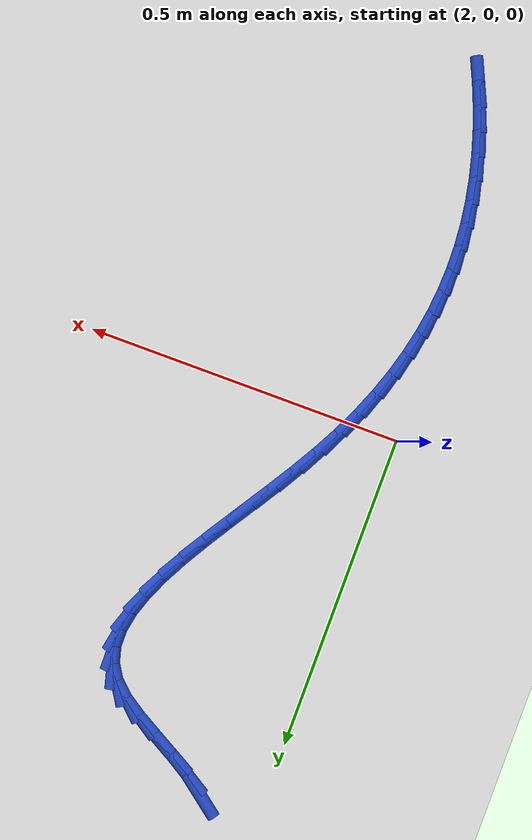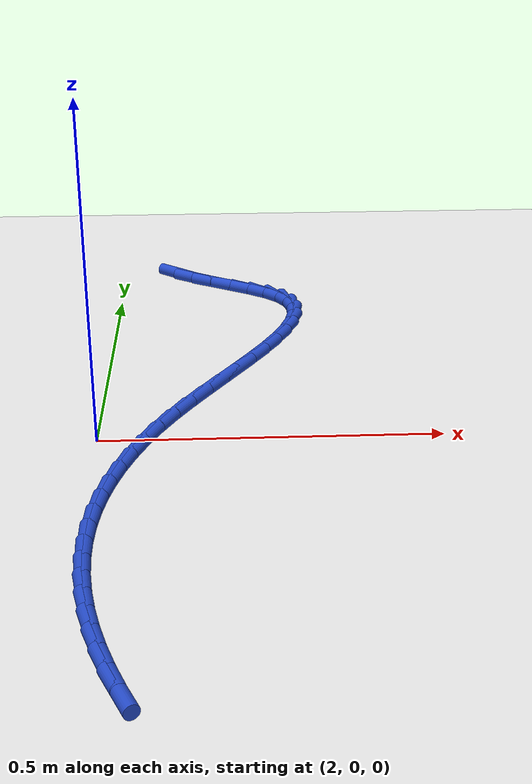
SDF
<sdf version="1.6">
 <world name="default">
  <model name="ground_plane">
   <static>1</static>
   <link name="link">
    <collision name="collision">
     <geometry><plane><normal>0 0 1</normal><size>100 100</size></plane></geometry>
     <surface><friction><ode><mu>100</mu><mu2>50</mu2></ode></friction></surface>
    </collision>
    <visual name="visual">
     <cast_shadows>0</cast_shadows>
     <geometry><plane><normal>0 0 1</normal><size>100 100</size></plane></geometry>
     <material>
      <script><uri>file://media/materials/scripts/gazebo.material</uri><name>Gazebo/WhiteGlow</name></script>
     </material>
    </visual>
   </link>
  </model>
  <model name="line">
   <link name="link_93">
    <pose>2.0958257800841174 0.6152069253075463 0.01 0 1.57 -0.6586565596329255</pose>
    <collision name="collision">
     <geometry><cylinder><radius>0.01</radius><length>0.08</length></cylinder></geometry>
    </collision>
    <visual name="visual">
     <material>
      <script><name>Gazebo/Blue</name><uri>file://media/materials/scripts/gazebo.material</uri></script>
     </material>
     <geometry><cylinder><radius>0.01</radius><length>0.08</length></cylinder></geometry>
    </visual>
   </link>
   <link name="link_94">
    <pose>2.126109799122904 0.5917684722824526 0.01 0 1.57 -0.5557442982288233</pose>
    <collision name="collision">
     <geometry><cylinder><radius>0.01</radius><length>0.08</length></cylinder></geometry>
    </collision>
    <visual name="visual">
     <material>
      <script><name>Gazebo/Blue</name><uri>file://media/materials/scripts/gazebo.material</uri></script>
     </material>
     <geometry><cylinder><radius>0.01</radius><length>0.08</length></cylinder></geometry>
    </visual>
   </link>
   <link name="link_95">
    <pose>2.1593689410147263 0.5711133211337995 0.01 0 1.57 -0.5099357473597003</pose>
    <collision name="collision">
     <geometry><cylinder><radius>0.01</radius><length>0.08</length></cylinder></geometry>
    </collision>
    <visual name="visual">
     <material>
      <script><name>Gazebo/Blue</name><uri>file://media/materials/scripts/gazebo.material</uri></script>
     </material>
     <geometry><cylinder><radius>0.01</radius><length>0.08</length></cylinder></geometry>
    </visual>
   </link>
   <link name="link_96">
    <pose>2.193329095016804 0.5521202776528499 0.01 0 1.57 -0.51787061249878</pose>
    <collision name="collision">
     <geometry><cylinder><radius>0.01</radius><length>0.08</length></cylinder></geometry>
    </collision>
    <visual name="visual">
     <material>
      <script><name>Gazebo/Blue</name><uri>file://media/materials/scripts/gazebo.material</uri></script>
     </material>
     <geometry><cylinder><radius>0.01</radius><length>0.08</length></cylinder></geometry>
    </visual>
   </link>
   <link name="link_97">
    <pose>2.22571615038636 0.5336681476308661 0.01 0 1.57 -0.5881444187835879</pose>
    <collision name="collision">
     <geometry><cylinder><radius>0.01</radius><length>0.08</length></cylinder></geometry>
    </collision>
    <visual name="visual">
     <material>
      <script><name>Gazebo/Blue</name><uri>file://media/materials/scripts/gazebo.material</uri></script>
     </material>
     <geometry><cylinder><radius>0.01</radius><length>0.08</length></cylinder></geometry>
    </visual>
   </link>
   <link name="link_98">
    <pose>2.2542559963806155 0.5146357368591106 0.01 0 1.57 -0.7463786734084865</pose>
    <collision name="collision">
     <geometry><cylinder><radius>0.01</radius><length>0.08</length></cylinder></geometry>
    </collision>
    <visual name="visual">
     <material>
      <script><name>Gazebo/Blue</name><uri>file://media/materials/scripts/gazebo.material</uri></script>
     </material>
     <geometry><cylinder><radius>0.01</radius><length>0.08</length></cylinder></geometry>
    </visual>
   </link>
   <link name="link_99">
    <pose>2.276674522256791 0.49390185112884627 0.01 0 1.57 -1.0139749860390823</pose>
    <collision name="collision">
     <geometry><cylinder><radius>0.01</radius><length>0.08</length></cylinder></geometry>
    </collision>
    <visual name="visual">
     <material>
      <script><name>Gazebo/Blue</name><uri>file://media/materials/scripts/gazebo.material</uri></script>
     </material>
     <geometry><cylinder><radius>0.01</radius><length>0.08</length></cylinder></geometry>
    </visual>
   </link>
   <link name="link_100">
    <pose>2.2912012485618876 0.47056687841171796 0.01 0 1.57 -1.3097597550777562</pose>
    <collision name="collision">
     <geometry><cylinder><radius>0.01</radius><length>0.08</length></cylinder></geometry>
    </collision>
    <visual name="visual">
     <material>
      <script><name>Gazebo/Blue</name><uri>file://media/materials/scripts/gazebo.material</uri></script>
     </material>
     <geometry><cylinder><radius>0.01</radius><length>0.08</length></cylinder></geometry>
    </visual>
   </link>
   <link name="link_101">
    <pose>2.2981275769082763 0.4446383705340115 0.01 0 1.57 -1.5656723943203643</pose>
    <collision name="collision">
     <geometry><cylinder><radius>0.01</radius><length>0.08</length></cylinder></geometry>
    </collision>
    <visual name="visual">
     <material>
      <script><name>Gazebo/Blue</name><uri>file://media/materials/scripts/gazebo.material</uri></script>
     </material>
     <geometry><cylinder><radius>0.01</radius><length>0.08</length></cylinder></geometry>
    </visual>
   </link>
   <link name="link_102">
    <pose>2.2982724951286078 0.41635600093042263 0.01 0 1.57 1.381696116541838</pose>
    <collision name="collision">
     <geometry><cylinder><radius>0.01</radius><length>0.08</length></cylinder></geometry>
    </collision>
    <visual name="visual">
     <material>
      <script><name>Gazebo/Blue</name><uri>file://media/materials/scripts/gazebo.material</uri></script>
     </material>
     <geometry><cylinder><radius>0.01</radius><length>0.08</length></cylinder></geometry>
    </visual>
   </link>
   <link name="link_103">
    <pose>2.2924549912950156 0.3859594431410127 0.01 0 1.57 1.243369695043512</pose>
    <collision name="collision">
     <geometry><cylinder><radius>0.01</radius><length>0.08</length></cylinder></geometry>
    </collision>
    <visual name="visual">
     <material>
      <script><name>Gazebo/Blue</name><uri>file://media/materials/scripts/gazebo.material</uri></script>
     </material>
     <geometry><cylinder><radius>0.01</radius><length>0.08</length></cylinder></geometry>
    </visual>
   </link>
   <link name="link_104">
    <pose>2.281494053479631 0.35368837070584164 0.01 0 1.57 1.1472626635385212</pose>
    <collision name="collision">
     <geometry><cylinder><radius>0.01</radius><length>0.08</length></cylinder></geometry>
    </collision>
    <visual name="visual">
     <material>
      <script><name>Gazebo/Blue</name><uri>file://media/materials/scripts/gazebo.material</uri></script>
     </material>
     <geometry><cylinder><radius>0.01</radius><length>0.08</length></cylinder></geometry>
    </visual>
   </link>
   <link name="link_105">
    <pose>2.266208669754588 0.3197824571649711 0.01 0 1.57 1.081642164414347</pose>
    <collision name="collision">
     <geometry><cylinder><radius>0.01</radius><length>0.08</length></cylinder></geometry>
    </collision>
    <visual name="visual">
     <material>
      <script><name>Gazebo/Blue</name><uri>file://media/materials/scripts/gazebo.material</uri></script>
     </material>
     <geometry><cylinder><radius>0.01</radius><length>0.08</length></cylinder></geometry>
    </visual>
   </link>
   <link name="link_106">
    <pose>2.24741782819202 0.28448137605846086 0.01 0 1.57 1.038414957868188</pose>
    <collision name="collision">
     <geometry><cylinder><radius>0.01</radius><length>0.08</length></cylinder></geometry>
    </collision>
    <visual name="visual">
     <material>
      <script><name>Gazebo/Blue</name><uri>file://media/materials/scripts/gazebo.material</uri></script>
     </material>
     <geometry><cylinder><radius>0.01</radius><length>0.08</length></cylinder></geometry>
    </visual>
   </link>
   <link name="link_107">
    <pose>2.2259405168640582 0.2480248009263725 0.01 0 1.57 1.0124463093483778</pose>
    <collision name="collision">
     <geometry><cylinder><radius>0.01</radius><length>0.08</length></cylinder></geometry>
    </collision>
    <visual name="visual">
     <material>
      <script><name>Gazebo/Blue</name><uri>file://media/materials/scripts/gazebo.material</uri></script>
     </material>
     <geometry><cylinder><radius>0.01</radius><length>0.08</length></cylinder></geometry>
    </visual>
   </link>
   <link name="link_108">
    <pose>2.202595723842837 0.21065240530876586 0.01 0 1.57 1.000696344793862</pose>
    <collision name="collision">
     <geometry><cylinder><radius>0.01</radius><length>0.08</length></cylinder></geometry>
    </collision>
    <visual name="visual">
     <material>
      <script><name>Gazebo/Blue</name><uri>file://media/materials/scripts/gazebo.material</uri></script>
     </material>
     <geometry><cylinder><radius>0.01</radius><length>0.08</length></cylinder></geometry>
    </visual>
   </link>
   <link name="link_109">
    <pose>2.178202437200489 0.1726038627457027 0.01 0 1.57 1.0016235767417387</pose>
    <collision name="collision">
     <geometry><cylinder><radius>0.01</radius><length>0.08</length></cylinder></geometry>
    </collision>
    <visual name="visual">
     <material>
      <script><name>Gazebo/Blue</name><uri>file://media/materials/scripts/gazebo.material</uri></script>
     </material>
     <geometry><cylinder><radius>0.01</radius><length>0.08</length></cylinder></geometry>
    </visual>
   </link>
   <link name="link_110">
    <pose>2.1535796450091462 0.13411884677724273 0.01 0 1.57 1.0148565623808599</pose>
    <collision name="collision">
     <geometry><cylinder><radius>0.01</radius><length>0.08</length></cylinder></geometry>
    </collision>
    <visual name="visual">
     <material>
      <script><name>Gazebo/Blue</name><uri>file://media/materials/scripts/gazebo.material</uri></script>
     </material>
     <geometry><cylinder><radius>0.01</radius><length>0.08</length></cylinder></geometry>
    </visual>
   </link>
   <link name="link_111">
    <pose>2.1295463353409425 0.09543703094344753 0.01 0 1.57 1.041073317362245</pose>
    <collision name="collision">
     <geometry><cylinder><radius>0.01</radius><length>0.08</length></cylinder></geometry>
    </collision>
    <visual name="visual">
     <material>
      <script><name>Gazebo/Blue</name><uri>file://media/materials/scripts/gazebo.material</uri></script>
     </material>
     <geometry><cylinder><radius>0.01</radius><length>0.08</length></cylinder></geometry>
    </visual>
   </link>
   <link name="link_112">
    <pose>2.1069214962680105 0.05679808878437749 0.01 0 1.57 1.0815864785343492</pose>
    <collision name="collision">
     <geometry><cylinder><radius>0.01</radius><length>0.08</length></cylinder></geometry>
    </collision>
    <visual name="visual">
     <material>
      <script><name>Gazebo/Blue</name><uri>file://media/materials/scripts/gazebo.material</uri></script>
     </material>
     <geometry><cylinder><radius>0.01</radius><length>0.08</length></cylinder></geometry>
    </visual>
   </link>
   <link name="link_113">
    <pose>2.086497206667581 0.01843351029219845 0.01 0 1.57 1.1308657998842442</pose>
    <collision name="collision">
     <geometry><cylinder><radius>0.01</radius><length>0.08</length></cylinder></geometry>
    </collision>
    <visual name="visual">
     <material>
      <script><name>Gazebo/Blue</name><uri>file://media/materials/scripts/gazebo.material</uri></script>
     </material>
     <geometry><cylinder><radius>0.01</radius><length>0.08</length></cylinder></geometry>
    </visual>
   </link>
   <link name="link_114">
    <pose>2.0686124034808584 -0.019563022778974776 0.01 0 1.57 1.1829103088206552</pose>
    <collision name="collision">
     <geometry><cylinder><radius>0.01</radius><length>0.08</length></cylinder></geometry>
    </collision>
    <visual name="visual">
     <material>
      <script><name>Gazebo/Blue</name><uri>file://media/materials/scripts/gazebo.material</uri></script>
     </material>
     <geometry><cylinder><radius>0.01</radius><length>0.08</length></cylinder></geometry>
    </visual>
   </link>
   <link name="link_115">
    <pose>2.053229415023452 -0.057212361820163114 0.01 0 1.57 1.2373228357283292</pose>
    <collision name="collision">
     <geometry><cylinder><radius>0.01</radius><length>0.08</length></cylinder></geometry>
    </collision>
    <visual name="visual">
     <material>
      <script><name>Gazebo/Blue</name><uri>file://media/materials/scripts/gazebo.material</uri></script>
     </material>
     <geometry><cylinder><radius>0.01</radius><length>0.08</length></cylinder></geometry>
    </visual>
   </link>
   <link name="link_116">
    <pose>2.0402991314850576 -0.09453883675274362 0.01 0 1.57 1.293813576394197</pose>
    <collision name="collision">
     <geometry><cylinder><radius>0.01</radius><length>0.08</length></cylinder></geometry>
    </collision>
    <visual name="visual">
     <material>
      <script><name>Gazebo/Blue</name><uri>file://media/materials/scripts/gazebo.material</uri></script>
     </material>
     <geometry><cylinder><radius>0.01</radius><length>0.08</length></cylinder></geometry>
    </visual>
   </link>
   <link name="link_117">
    <pose>2.02977244305537 -0.13156677749809245 0.01 0 1.57 1.3520053647823962</pose>
    <collision name="collision">
     <geometry><cylinder><radius>0.01</radius><length>0.08</length></cylinder></geometry>
    </collision>
    <visual name="visual">
     <material>
      <script><name>Gazebo/Blue</name><uri>file://media/materials/scripts/gazebo.material</uri></script>
     </material>
     <geometry><cylinder><radius>0.01</radius><length>0.08</length></cylinder></geometry>
    </visual>
   </link>
   <link name="link_118">
    <pose>2.0216002399240853 -0.16832051397758643 0.01 0 1.57 1.4114410670358672</pose>
    <collision name="collision">
     <geometry><cylinder><radius>0.01</radius><length>0.08</length></cylinder></geometry>
    </collision>
    <visual name="visual">
     <material>
      <script><name>Gazebo/Blue</name><uri>file://media/materials/scripts/gazebo.material</uri></script>
     </material>
     <geometry><cylinder><radius>0.01</radius><length>0.08</length></cylinder></geometry>
    </visual>
   </link>
   <link name="link_119">
    <pose>2.0157334122808988 -0.20482437611259988 0.01 0 1.57 1.471599019817504</pose>
    <collision name="collision">
     <geometry><cylinder><radius>0.01</radius><length>0.08</length></cylinder></geometry>
    </collision>
    <visual name="visual">
     <material>
      <script><name>Gazebo/Blue</name><uri>file://media/materials/scripts/gazebo.material</uri></script>
     </material>
     <geometry><cylinder><radius>0.01</radius><length>0.08</length></cylinder></geometry>
    </visual>
   </link>
   <link name="link_120">
    <pose>2.0121228503155058 -0.24110269382450977 0.01 0 1.57 1.5319157425584706</pose>
    <collision name="collision">
     <geometry><cylinder><radius>0.01</radius><length>0.08</length></cylinder></geometry>
    </collision>
    <visual name="visual">
     <material>
      <script><name>Gazebo/Blue</name><uri>file://media/materials/scripts/gazebo.material</uri></script>
     </material>
     <geometry><cylinder><radius>0.01</radius><length>0.08</length></cylinder></geometry>
    </visual>
   </link>
   <link name="link_121">
    <pose>2.010719444217603 -0.27717979703469225 0.01 0 1.57 -1.5497789383513596</pose>
    <collision name="collision">
     <geometry><cylinder><radius>0.01</radius><length>0.08</length></cylinder></geometry>
    </collision>
    <visual name="visual">
     <material>
      <script><name>Gazebo/Blue</name><uri>file://media/materials/scripts/gazebo.material</uri></script>
     </material>
     <geometry><cylinder><radius>0.01</radius><length>0.08</length></cylinder></geometry>
    </visual>
   </link>
   <link name="link_122">
    <pose>2.011474084176885 -0.3130800156645241 0.01 0 1.57 -1.4908617432945552</pose>
    <collision name="collision">
     <geometry><cylinder><radius>0.01</radius><length>0.08</length></cylinder></geometry>
    </collision>
    <visual name="visual">
     <material>
      <script><name>Gazebo/Blue</name><uri>file://media/materials/scripts/gazebo.material</uri></script>
     </material>
     <geometry><cylinder><radius>0.01</radius><length>0.08</length></cylinder></geometry>
    </visual>
   </link>
   <link name="link_123">
    <pose>2.014337660383047 -0.34882767963537986 0.01 0 1.57 -1.4334442857697165</pose>
    <collision name="collision">
     <geometry><cylinder><radius>0.01</radius><length>0.08</length></cylinder></geometry>
    </collision>
    <visual name="visual">
     <material>
      <script><name>Gazebo/Blue</name><uri>file://media/materials/scripts/gazebo.material</uri></script>
     </material>
     <geometry><cylinder><radius>0.01</radius><length>0.08</length></cylinder></geometry>
    </visual>
   </link>
   <link name="link_124">
    <pose>2.0192610630257852 -0.38444711886863614 0.01 0 1.57 -1.3779801053738836</pose>
    <collision name="collision">
     <geometry><cylinder><radius>0.01</radius><length>0.08</length></cylinder></geometry>
    </collision>
    <visual name="visual">
     <material>
      <script><name>Gazebo/Blue</name><uri>file://media/materials/scripts/gazebo.material</uri></script>
     </material>
     <geometry><cylinder><radius>0.01</radius><length>0.08</length></cylinder></geometry>
    </visual>
   </link>
   <link name="link_125">
    <pose>2.026195182294795 -0.4199626632856694 0.01 0 1.57 -1.3248423243279963</pose>
    <collision name="collision">
     <geometry><cylinder><radius>0.01</radius><length>0.08</length></cylinder></geometry>
    </collision>
    <visual name="visual">
     <material>
      <script><name>Gazebo/Blue</name><uri>file://media/materials/scripts/gazebo.material</uri></script>
     </material>
     <geometry><cylinder><radius>0.01</radius><length>0.08</length></cylinder></geometry>
    </visual>
   </link>
   <link name="link_126">
    <pose>2.0350909083797717 -0.45539864280785614 0.01 0 1.57 -1.2743166953455913</pose>
    <collision name="collision">
     <geometry><cylinder><radius>0.01</radius><length>0.08</length></cylinder></geometry>
    </collision>
    <visual name="visual">
     <material>
      <script><name>Gazebo/Blue</name><uri>file://media/materials/scripts/gazebo.material</uri></script>
     </material>
     <geometry><cylinder><radius>0.01</radius><length>0.08</length></cylinder></geometry>
    </visual>
   </link>
   <link name="link_127">
    <pose>2.045899131470412 -0.4907793873565712 0.01 0 1.57 -1.2266020515251124</pose>
    <collision name="collision">
     <geometry><cylinder><radius>0.01</radius><length>0.08</length></cylinder></geometry>
    </collision>
    <visual name="visual">
     <material>
      <script><name>Gazebo/Blue</name><uri>file://media/materials/scripts/gazebo.material</uri></script>
     </material>
     <geometry><cylinder><radius>0.01</radius><length>0.08</length></cylinder></geometry>
    </visual>
   </link>
   <link name="link_128">
    <pose>2.058570741756409 -0.5261292268531912 0.01 0 1.57 -1.1818165964116747</pose>
    <collision name="collision">
     <geometry><cylinder><radius>0.01</radius><length>0.08</length></cylinder></geometry>
    </collision>
    <visual name="visual">
     <material>
      <script><name>Gazebo/Blue</name><uri>file://media/materials/scripts/gazebo.material</uri></script>
     </material>
     <geometry><cylinder><radius>0.01</radius><length>0.08</length></cylinder></geometry>
    </visual>
   </link>
   <link name="link_129">
    <pose>2.0730566294274606 -0.5614724912190923 0.01 0 1.57 -1.1420399540826087</pose>
    <collision name="collision">
     <geometry><cylinder><radius>0.01</radius><length>0.08</length></cylinder></geometry>
    </collision>
    <visual name="visual">
     <material>
      <script><name>Gazebo/Blue</name><uri>file://media/materials/scripts/gazebo.material</uri></script>
     </material>
     <geometry><cylinder><radius>0.01</radius><length>0.08</length></cylinder></geometry>
    </visual>
   </link>
  </model>
 </world>
</sdf>
